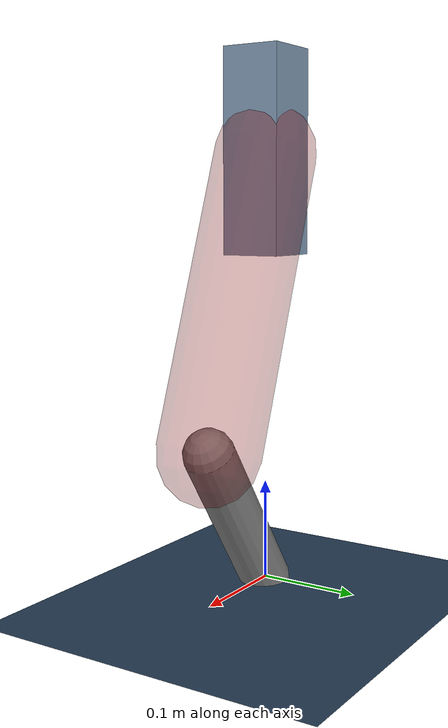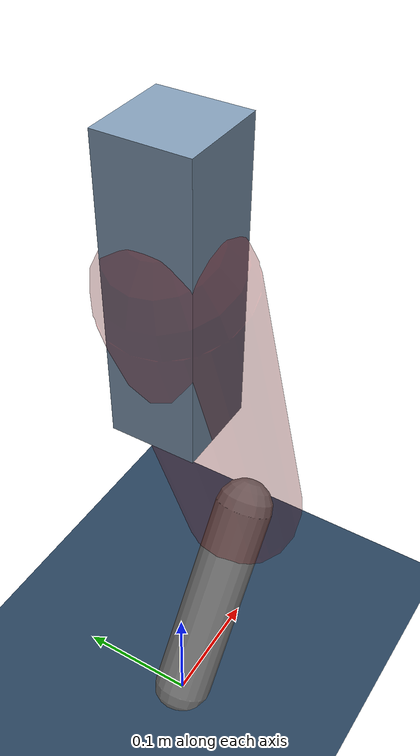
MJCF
<mujoco model="Hopper2D">
	<compiler inertiafromgeom="true" angle="radian" />
	<option timestep="0.001" integrator="implicit" cone="elliptic" solver="Newton" tolerance="1e-10" />

	<default>
		<geom contype="1" conaffinity="1" condim="3" friction="2 0.005 0.0001" solref="0.005 1" />
		<joint limited="true" damping="0.1" />
	</default>

	<asset>
		<texture name="skybox" type="skybox" builtin="gradient" rgb1=".4 .6 .8" rgb2="0 0 0" width="800" height="800" />
		<texture name="grid" type="2d" builtin="checker" rgb1=".1 .2 .3" rgb2=".2 .3 .4" width="300" height="300" mark="edge" markrgb=".2 .3 .4" />
		<material name="ground" texture="grid" texrepeat="1 1" texuniform="true" reflectance="0.1" />
		<material name="leg" rgba="0.5 0.6 0.7 1" />
	</asset>

	<worldbody>

		<geom name="floor" type="plane" size="5 5 0.25" material="ground" />

		<light directional="false" diffuse="0.8 0.8 0.8" specular="0.3 0.3 0.3" pos="0 0 2" dir="0 0 -1" />
		<light mode="targetbodycom" target="base" directional="false" diffuse="0.8 0.8 0.8" specular="0.3 0.3 0.3" pos="0 0 2" dir="0 0 -1" />

		<camera name="fixed" pos="0 -2 1" xyaxes="1 0 0 0 0 1" />
		<camera name="tracking" mode="trackcom" pos="0 -3 1" />

		<body name="root" pos="0 0 0.4300728345230732">
			<joint name="slide_x" type="slide" axis="1 0 0" range="-100 100" />
			<joint name="slide_z" type="slide" axis="0 0 1" range="0 10" />

			<body name="base" pos="0 0 0">
				<geom name="torso" type="box" size="0.03 0.03 0.1" mass="2.487" material="leg" />

				<body name="link1" pos="0 0 0" euler="0 1.2274474860053077 0">
					<joint type="hinge" axis="0 -1 0" pos="0 0 0" name="hinge1" limited="true" range="-3.14 3.14" stiffness="0" damping="0.1" />
					<geom name="thigh" type="capsule" fromto="0 0 0 0.2995251859145559 0 0" size="0.05" rgba="0.5 0 0 0.3" mass="0.987418001969301" />

					<body name="link2" pos="0.2995251859145559 0 0" euler="0 0.9413212397642736 0">
						<joint type="hinge" axis="0 -1 0" pos="0 0 0" name="hinge2" limited="true" range="-3.14 3.14" stiffness="0" damping="0.1" />
						<geom name="shank" type="capsule" fromto="0 0 0 0.17910944769840279 0 0" size="0.025" mass="0.3830985029285625" />

					</body>
				</body>
			</body>
		</body>
	</worldbody>

	<actuator>
		<motor name="torque1" joint="hinge1" ctrlrange="-43.7332526566926 43.7332526566926" ctrllimited="true" gear="1" />
		<motor name="torque2" joint="hinge2" ctrlrange="-81.28154753082593 81.28154753082593" ctrllimited="true" gear="1" />
	</actuator>
</mujoco>
